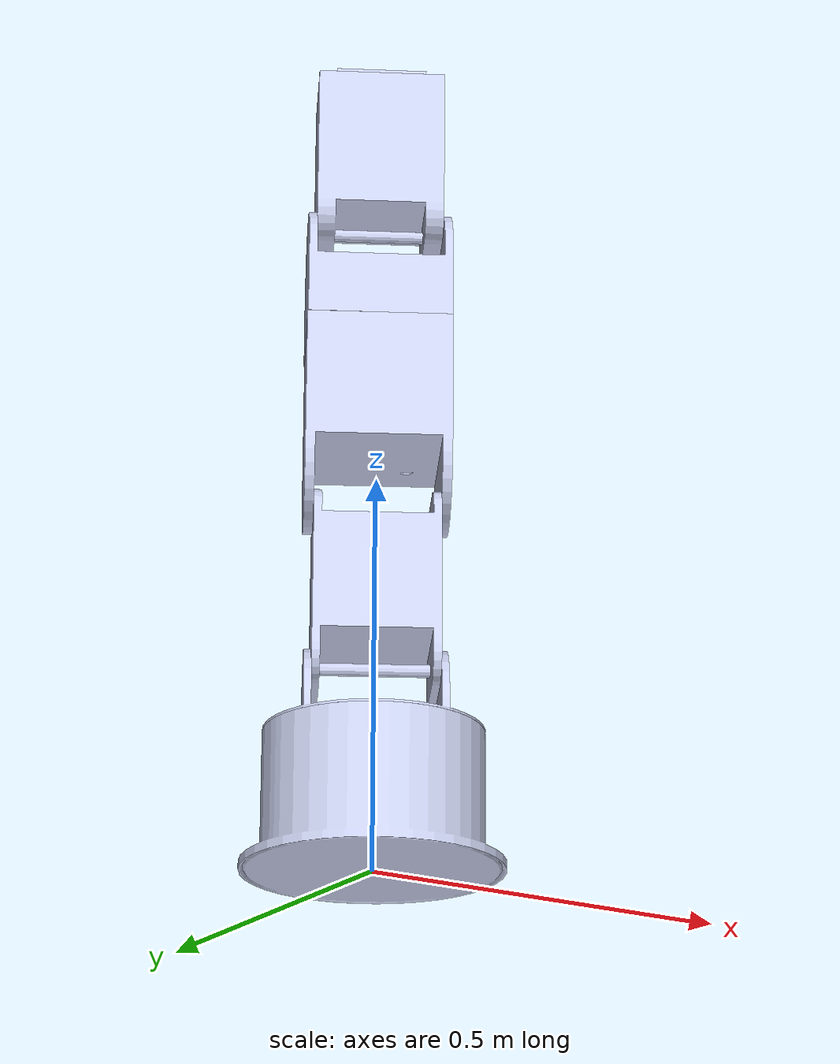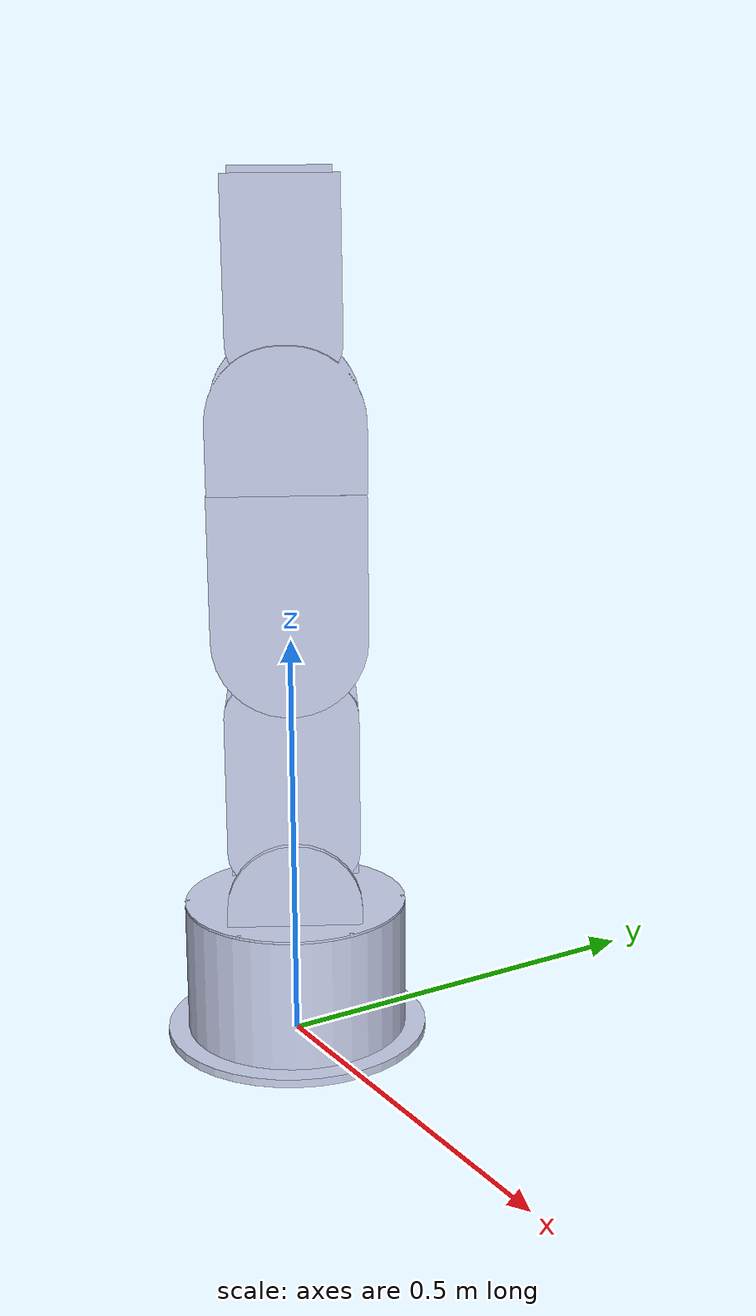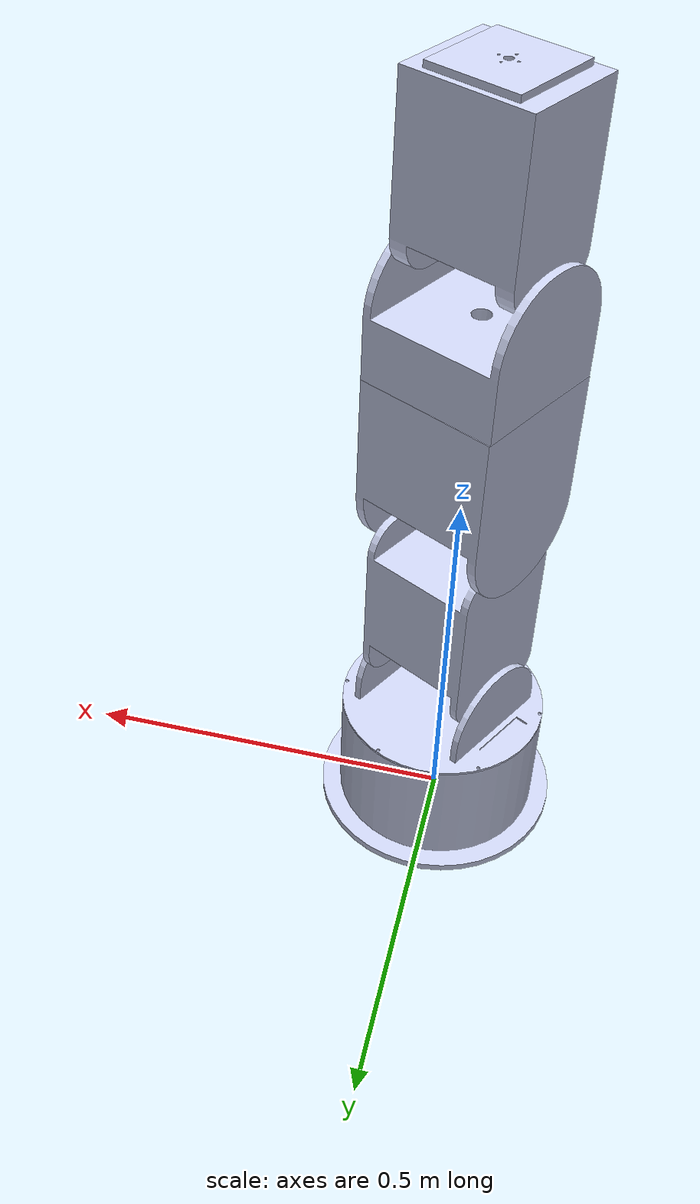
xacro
<?xml version="1.0" ?>
<robot name="arm" xmlns:xacro="http://wiki.ros.org/xacro">
  <!-- Import Gazebo HW Plugins -->
  <xacro:include filename="$(find arms_urdf)/robots/arms.gazebo" />
  <!-- Link untuk gazebo -->
  <link name="world"/>

  <joint name="fixed" type="fixed">
    <parent link="world"/>
    <child link="base_link"/>
  </joint>

  <!-- Link dan Joint -->

  <link
    name="base_link">
    <inertial>
      <origin
        xyz="-0.000257590501677458 0.000160951844383812 0.0438910721504651"
        rpy="0 0 0" />
      <mass
        value="1.46079346002943" />
      <inertia
        ixx="0.0149175345769698"
        ixy="5.16987882845706E-22"
        ixz="4.35748640729406E-18"
        iyy="0.0149175345769698"
        iyz="8.17144450208449E-19"
        izz="0.0217682754648218" />
    </inertial>
    <visual>
      <origin
        xyz="0 0 0"
        rpy="0 0 0" />
      <geometry>
        <mesh
          filename="package://arms_urdf/meshes/base_link.STL" />
      </geometry>
      <material
        name="">
        <color
          rgba="0.792156862745098 0.819607843137255 0.933333333333333 1" />
      </material>
    </visual>
    <collision>
      <origin
        xyz="0 0 0"
        rpy="0 0 0" />
      <geometry>
        <mesh
          filename="package://arms_urdf/meshes/base_link.STL" />
      </geometry>
    </collision>
  </link>
  <link
    name="link01">
    <inertial>
      <origin
        xyz="-0.000252612081370486 0.0961630017561164 -1.78853785839367E-05"
        rpy="0 0 0" />
      <mass
        value="8.87878815784468" />
      <inertia
        ixx="0.0602253511162201"
        ixy="-3.39330190897228E-05"
        ixz="-5.09118788794005E-13"
        iyy="0.0749447295933669"
        iyz="2.97308564486259E-18"
        izz="0.0614567693825541" />
    </inertial>
    <visual>
      <origin
        xyz="0 0 0"
        rpy="0 0 0" />
      <geometry>
        <mesh
          filename="package://arms_urdf/meshes/link01.STL" />
      </geometry>
      <material
        name="">
        <color
          rgba="0.792156862745098 0.819607843137255 0.933333333333333 1" />
      </material>
    </visual>
    <collision>
      <origin
        xyz="0 0 0"
        rpy="0 0 0" />
      <geometry>
        <mesh
          filename="package://arms_urdf/meshes/link01.STL" />
      </geometry>
    </collision>
  </link>
  <joint
    name="joint1"
    type="revolute">
    <origin
      xyz="0 0 0"
      rpy="1.5708 -2.9332E-17 -0.49956" />
    <parent
      link="base_link" />
    <child
      link="link01" />
    <axis
      xyz="0 1 0" />
    <limit
      lower="-3.14"
      upper="3.14"
      effort="250"
      velocity="0.2" />
    <dynamics
      damping="20"
      friction="1"/>
  </joint>
  <link
    name="link12">
    <inertial>
      <origin
        xyz="-0.101594974325304 -4.10435655074975E-06 0.000529735762875798"
        rpy="0 0 0" />
      <mass
        value="3.85416637265316" />
      <inertia
        ixx="0.0164870503050613"
        ixy="-7.6232965252887E-19"
        ixz="-2.58588014018634E-07"
        iyy="0.0178902319553975"
        iyz="3.46944695195361E-18"
        izz="0.0169131752853703" />
    </inertial>
    <visual>
      <origin
        xyz="0 0 0"
        rpy="0 0 0" />
      <geometry>
        <mesh
          filename="package://arms_urdf/meshes/link12.STL" />
      </geometry>
      <material
        name="">
        <color
          rgba="0.792156862745098 0.819607843137255 0.933333333333333 1" />
      </material>
    </visual>
    <collision>
      <origin
        xyz="0 0 0"
        rpy="0 0 0" />
      <geometry>
        <mesh
          filename="package://arms_urdf/meshes/link12.STL" />
      </geometry>
    </collision>
  </link>
  <joint
    name="joint2"
    type="revolute">
    <origin
      xyz="0 0.25119 -1.3781E-05"
      rpy="1.5708 0.0023901 -1.5708" />
    <parent
      link="link01" />
    <child
      link="link12" />
    <axis
      xyz="0 0 -1" />
    <limit
      lower="-1.57"
      upper="1.57"
      effort="250"
      velocity="0.2" />
    <dynamics
      damping="20"
      friction="1"/>
  </joint>
  <link
    name="link23">
    <inertial>
      <origin
        xyz="0.151099164387523 -2.91050754214033E-06 0.000378603295085776"
        rpy="0 0 0" />
      <mass
        value="3.31590710530064" />
      <inertia
        ixx="0.0188087448350524"
        ixy="-6.95827062286705E-07"
        ixz="6.95827062284015E-07"
        iyy="0.0198943758677196"
        iyz="-3.86066994501749E-07"
        izz="0.0188901677817118" />
    </inertial>
    <visual>
      <origin
        xyz="0 0 0"
        rpy="0 0 0" />
      <geometry>
        <mesh
          filename="package://arms_urdf/meshes/link23.STL" />
      </geometry>
      <material
        name="">
        <color
          rgba="0.792156862745098 0.819607843137255 0.933333333333333 1" />
      </material>
    </visual>
    <collision>
      <origin
        xyz="0 0 0"
        rpy="0 0 0" />
      <geometry>
        <mesh
          filename="package://arms_urdf/meshes/link23.STL" />
      </geometry>
    </collision>
  </link>
  <joint
    name="joint3"
    type="revolute">
    <origin
      xyz="-0.197 0 0"
      rpy="2.387E-15 -1.4854E-16 3.1396" />
    <parent
      link="link12" />
    <child
      link="link23" />
    <axis
      xyz="0 0 -1" />
    <limit
      lower="-1.57"
      upper="1.57"
      effort="250"
      velocity="0.2" />
    <dynamics
      damping="20"
      friction="1"/>
  </joint>
  <link
    name="link34">
    <inertial>
      <origin
        xyz="0.0482603056626639 -4.14165229889463E-17 8.67361737988404E-18"
        rpy="0 0 0" />
      <mass
        value="2.82806325573484" />
      <inertia
        ixx="0.0163173818432927"
        ixy="-7.46405433120489E-18"
        ixz="4.18434275943624E-18"
        iyy="0.0118860153087714"
        iyz="6.07153216591882E-18"
        izz="0.0105589874220338" />
    </inertial>
    <visual>
      <origin
        xyz="0 0 0"
        rpy="0 0 0" />
      <geometry>
        <mesh
          filename="package://arms_urdf/meshes/link34.STL" />
      </geometry>
      <material
        name="">
        <color
          rgba="0.792156862745098 0.819607843137255 0.933333333333333 1" />
      </material>
    </visual>
    <collision>
      <origin
        xyz="0 0 0"
        rpy="0 0 0" />
      <geometry>
        <mesh
          filename="package://arms_urdf/meshes/link34.STL" />
      </geometry>
    </collision>
  </link>
  <joint
    name="joint4"
    type="revolute">
    <origin
      xyz="0.23939 0 0.00037569"
      rpy="-3.132 1.2707E-16 9.3805E-16" />
    <parent
      link="link23" />
    <child
      link="link34" />
    <axis
      xyz="1 0 0" />
    <limit
      lower="-3.14"
      upper="3.14"
      effort="250"
      velocity="0.2" />
    <dynamics
      damping="20"
      friction="1"/>
  </joint>
  <link
    name="link45">
    <inertial>
      <origin
        xyz="0.0942300284072416 -2.69749500514394E-16 8.59772322781005E-16"
        rpy="0 0 0" />
      <mass
        value="2.63887356479485" />
      <inertia
        ixx="0.0118496537137706"
        ixy="1.35118695746006E-17"
        ixz="-1.96511643762998E-18"
        iyy="0.0163318077498838"
        iyz="8.67361737988404E-19"
        izz="0.0132234908488744" />
    </inertial>
    <visual>
      <origin
        xyz="0 0 0"
        rpy="0 0 0" />
      <geometry>
        <mesh
          filename="package://arms_urdf/meshes/link45.STL" />
      </geometry>
      <material
        name="">
        <color
          rgba="0.792156862745098 0.819607843137255 0.933333333333333 1" />
      </material>
    </visual>
    <collision>
      <origin
        xyz="0 0 0"
        rpy="0 0 0" />
      <geometry>
        <mesh
          filename="package://arms_urdf/meshes/link45.STL" />
      </geometry>
    </collision>
  </link>
  <joint
    name="joint5"
    type="revolute">
    <origin
      xyz="0.14561 0 0"
      rpy="8.8818E-16 2.4503E-16 0.0033306" />
    <parent
      link="link34" />
    <child
      link="link45" />
    <axis
      xyz="0 0 1" />
    <limit
      lower="-1.57"
      upper="1.57"
      effort="250"
      velocity="0.2" />
    <dynamics
      damping="20"
      friction="1"/>
  </joint>
  <link
    name="link56">
    <inertial>
      <origin
        xyz="-0.0716818198230756 2.14238349283136E-16 1.36609473733174E-17"
        rpy="0 0 0" />
      <mass
        value="1.15589985849778" />
      <inertia
        ixx="0.00164668838339471"
        ixy="3.73965046212774E-18"
        ixz="-4.65868120989865E-20"
        iyy="0.00275316206435201"
        iyz="-2.16840434497101E-19"
        izz="0.00275316206435201" />
    </inertial>
    <visual>
      <origin
        xyz="0 0 0"
        rpy="0 0 0" />
      <geometry>
        <mesh
          filename="package://arms_urdf/meshes/link56.STL" />
      </geometry>
      <material
        name="">
        <color
          rgba="0.792156862745098 0.819607843137255 0.933333333333333 1" />
      </material>
    </visual>
    <collision>
      <origin
        xyz="0 0 0"
        rpy="0 0 0" />
      <geometry>
        <mesh
          filename="package://arms_urdf/meshes/link56.STL" />
      </geometry>
    </collision>
  </link>
  <joint
    name="joint6"
    type="prismatic">
    <origin
      xyz="0.071461 0 0"
      rpy="2.2204E-16 5.5858E-16 3.1416" />
    <parent
      link="link45" />
    <child
      link="link56" />
    <axis
      xyz="-1 0 0" />
    <limit
      lower="0"
      upper="0.1"
      effort="300"
      velocity="0.5" />
    <dynamics
      damping="20"
      friction="0.1"/>
  </joint>

  <transmission name="tran1">
    <type>transmission_interface/SimpleTransmission</type>
    <joint name="joint1">
      <hardwareInterface>hardware_interface/PositionJointInterface</hardwareInterface>
    </joint>
    <actuator name="motor1">
      <hardwareInterface>hardware_interface/PositionJointInterface</hardwareInterface>
      <mechanicalReduction>1</mechanicalReduction>
    </actuator>
  </transmission>

  <transmission name="tran2">
    <type>transmission_interface/SimpleTransmission</type>
    <joint name="joint2">
      <hardwareInterface>hardware_interface/PositionJointInterface</hardwareInterface>
    </joint>
    <actuator name="motor2">
      <hardwareInterface>hardware_interface/PositionJointInterface</hardwareInterface>
      <mechanicalReduction>1</mechanicalReduction>
    </actuator>
  </transmission>

  <transmission name="tran3">
    <type>transmission_interface/SimpleTransmission</type>
    <joint name="joint3">
      <hardwareInterface>hardware_interface/PositionJointInterface</hardwareInterface>
    </joint>
    <actuator name="motor3">
      <hardwareInterface>hardware_interface/PositionJointInterface</hardwareInterface>
      <mechanicalReduction>1</mechanicalReduction>
    </actuator>
  </transmission>

  <transmission name="tran4">
    <type>transmission_interface/SimpleTransmission</type>
    <joint name="joint4">
      <hardwareInterface>hardware_interface/PositionJointInterface</hardwareInterface>
    </joint>
    <actuator name="motor4">
      <hardwareInterface>hardware_interface/PositionJointInterface</hardwareInterface>
      <mechanicalReduction>1</mechanicalReduction>
    </actuator>
  </transmission>

  <transmission name="tran5">
    <type>transmission_interface/SimpleTransmission</type>
    <joint name="joint5">
      <hardwareInterface>hardware_interface/PositionJointInterface</hardwareInterface>
    </joint>
    <actuator name="motor5">
      <hardwareInterface>hardware_interface/PositionJointInterface</hardwareInterface>
      <mechanicalReduction>1</mechanicalReduction>
    </actuator>
  </transmission>

  <transmission name="tran6">
    <type>transmission_interface/SimpleTransmission</type>
    <joint name="joint6">
      <hardwareInterface>hardware_interface/PositionJointInterface</hardwareInterface>
    </joint>
    <actuator name="motor6">
      <hardwareInterface>hardware_interface/PositionJointInterface</hardwareInterface>
      <mechanicalReduction>1</mechanicalReduction>
    </actuator>
  </transmission>

</robot>
